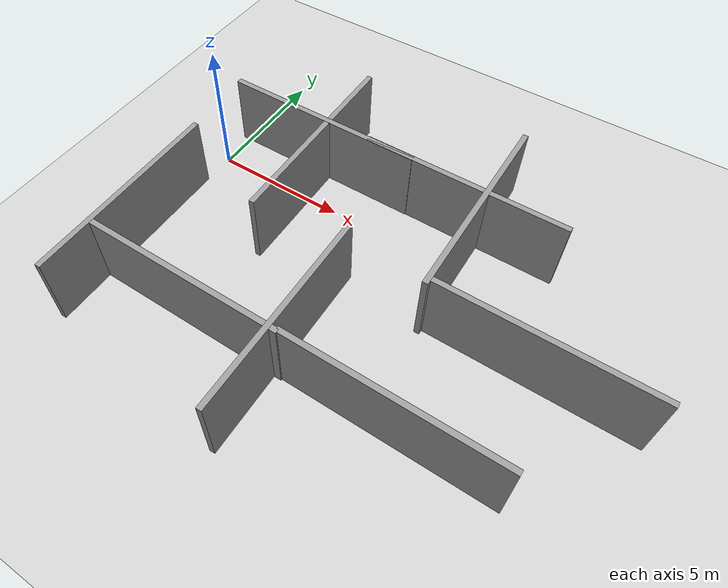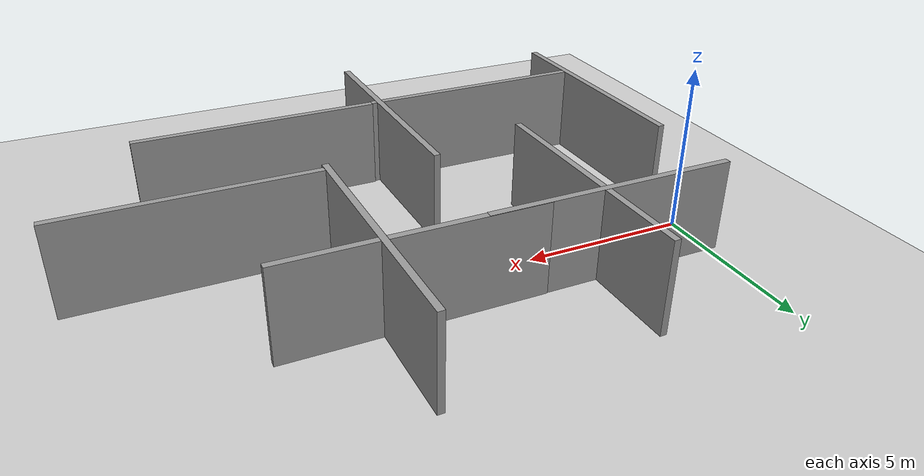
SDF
<sdf version="1.6">
 <world name="default">
  <light name="sun" type="directional">
   <pose>0 0 10 0 -0 0</pose>
   <diffuse>0.8 0.8 0.8 1</diffuse>
   <specular>0.2 0.2 0.2 1</specular>
   <attenuation>
    <range>1000</range>
    <constant>0.9</constant>
    <linear>0.01</linear>
    <quadratic>0.001</quadratic>
   </attenuation>
   <direction>-0.5 0.1 -0.9</direction>
  </light>
  <model name="ground_plane">
   <static>1</static>
   <link name="link">
    <collision name="collision">
     <geometry><plane><normal>0 0 1</normal><size>100 100</size></plane></geometry>
     <surface><friction><ode><mu>100</mu><mu2>50</mu2></ode></friction></surface>
    </collision>
    <visual name="visual">
     <cast_shadows>0</cast_shadows>
     <geometry><plane><normal>0 0 1</normal><size>100 100</size></plane></geometry>
     <material>
      <script><uri>file://media/materials/scripts/gazebo.material</uri><name>Gazebo/Grey</name></script>
     </material>
    </visual>
    <velocity_decay><linear>0</linear><angular>0</angular></velocity_decay>
   </link>
  </model>
  <physics name="default_physics" default="0" type="ode">
   <max_step_size>0.001</max_step_size>
   <real_time_factor>1</real_time_factor>
   <real_time_update_rate>1000</real_time_update_rate>
  </physics>
  <scene><ambient>0.4 0.4 0.4 1</ambient><background>0.7 0.7 0.7 1</background><shadows>1</shadows></scene>
  <model name="grey_wall">
   <static>1</static>
   <link name="link">
    <pose>0 0 1.4 0 -0 0</pose>
    <collision name="collision"><geometry><box><size>7.5 0.2 2.8</size></box></geometry></collision>
    <visual name="visual">
     <cast_shadows>0</cast_shadows>
     <geometry><box><size>7.5 0.2 2.8</size></box></geometry>
     <material>
      <script>
       <uri>model://grey_wall/materials/scripts</uri>
       <uri>model://grey_wall/materials/textures</uri>
       <name>vrc/grey_wall</name>
      </script>
     </material>
    </visual>
    <velocity_decay><linear>0</linear><angular>0</angular></velocity_decay>
   </link>
   <pose>3.43398 1.48982 0 0 -0 0</pose>
  </model>
  <gravity>0 0 -9.8</gravity>
  <magnetic_field>6e-06 2.3e-05 -4.2e-05</magnetic_field>
  <atmosphere type="adiabatic"/>
  <spherical_coordinates>
   <surface_model>EARTH_WGS84</surface_model>
   <latitude_deg>0</latitude_deg>
   <longitude_deg>0</longitude_deg>
   <elevation>0</elevation>
   <heading_deg>0</heading_deg>
  </spherical_coordinates>
  <model name="grey_wall_clone">
   <static>1</static>
   <link name="link">
    <pose>0 0 1.4 0 -0 0</pose>
    <collision name="collision"><geometry><box><size>7.5 0.2 2.8</size></box></geometry></collision>
    <visual name="visual">
     <cast_shadows>0</cast_shadows>
     <geometry><box><size>7.5 0.2 2.8</size></box></geometry>
     <material>
      <script>
       <uri>model://grey_wall/materials/scripts</uri>
       <uri>model://grey_wall/materials/textures</uri>
       <name>vrc/grey_wall</name>
      </script>
     </material>
    </visual>
    <velocity_decay><linear>0</linear><angular>0</angular></velocity_decay>
   </link>
   <pose>3.73863 0.62406 -0.000873 -3.8e-05 -0.002072 -1.55267</pose>
  </model>
  <model name="grey_wall_clone_0">
   <static>1</static>
   <link name="link">
    <pose>0 0 1.4 0 -0 0</pose>
    <collision name="collision"><geometry><box><size>7.5 0.2 2.8</size></box></geometry></collision>
    <visual name="visual">
     <cast_shadows>0</cast_shadows>
     <geometry><box><size>7.5 0.2 2.8</size></box></geometry>
     <material>
      <script>
       <uri>model://grey_wall/materials/scripts</uri>
       <uri>model://grey_wall/materials/textures</uri>
       <name>vrc/grey_wall</name>
      </script>
     </material>
    </visual>
    <velocity_decay><linear>0</linear><angular>0</angular></velocity_decay>
   </link>
   <pose>3.64552 -6.5512 0 0 -0 0</pose>
  </model>
  <model name="grey_wall_clone_clone">
   <static>1</static>
   <link name="link">
    <pose>0 0 1.4 0 -0 0</pose>
    <collision name="collision"><geometry><box><size>7.5 0.2 2.8</size></box></geometry></collision>
    <visual name="visual">
     <cast_shadows>0</cast_shadows>
     <geometry><box><size>7.5 0.2 2.8</size></box></geometry>
     <material>
      <script>
       <uri>model://grey_wall/materials/scripts</uri>
       <uri>model://grey_wall/materials/textures</uri>
       <name>vrc/grey_wall</name>
      </script>
     </material>
    </visual>
    <velocity_decay><linear>0</linear><angular>0</angular></velocity_decay>
   </link>
   <pose>-0.047018 -4.98891 -0.00123 -3.8e-05 -0.002072 -1.55267</pose>
  </model>
  <model name="grey_wall_clone_clone_0">
   <static>1</static>
   <link name="link">
    <pose>0 0 1.4 0 -0 0</pose>
    <collision name="collision"><geometry><box><size>7.5 0.2 2.8</size></box></geometry></collision>
    <visual name="visual">
     <cast_shadows>0</cast_shadows>
     <geometry><box><size>7.5 0.2 2.8</size></box></geometry>
     <material>
      <script>
       <uri>model://grey_wall/materials/scripts</uri>
       <uri>model://grey_wall/materials/textures</uri>
       <name>vrc/grey_wall</name>
      </script>
     </material>
    </visual>
    <velocity_decay><linear>0</linear><angular>0</angular></velocity_decay>
   </link>
   <pose>7.02894 -5.87584 0.003824 -3.8e-05 -0.002072 -1.55267</pose>
  </model>
  <model name="grey_wall_clone_0_clone">
   <static>1</static>
   <link name="link">
    <pose>0 0 1.4 0 -0 0</pose>
    <collision name="collision"><geometry><box><size>7.5 0.2 2.8</size></box></geometry></collision>
    <visual name="visual">
     <cast_shadows>0</cast_shadows>
     <geometry><box><size>7.5 0.2 2.8</size></box></geometry>
     <material>
      <script>
       <uri>model://grey_wall/materials/scripts</uri>
       <uri>model://grey_wall/materials/textures</uri>
       <name>vrc/grey_wall</name>
      </script>
     </material>
    </visual>
    <velocity_decay><linear>0</linear><angular>0</angular></velocity_decay>
   </link>
   <pose>11.0687 -6.50166 0 0 -0 0</pose>
  </model>
  <model name="grey_wall_clone_1">
   <static>1</static>
   <link name="link">
    <pose>0 0 1.4 0 -0 0</pose>
    <collision name="collision"><geometry><box><size>7.5 0.2 2.8</size></box></geometry></collision>
    <visual name="visual">
     <cast_shadows>0</cast_shadows>
     <geometry><box><size>7.5 0.2 2.8</size></box></geometry>
     <material>
      <script>
       <uri>model://grey_wall/materials/scripts</uri>
       <uri>model://grey_wall/materials/textures</uri>
       <name>vrc/grey_wall</name>
      </script>
     </material>
    </visual>
    <velocity_decay><linear>0</linear><angular>0</angular></velocity_decay>
   </link>
   <pose>13.7329 -2.55807 0 0 -0 0</pose>
  </model>
  <model name="grey_wall_clone_clone_0_clone">
   <static>1</static>
   <link name="link">
    <pose>0 0 1.4 0 -0 0</pose>
    <collision name="collision"><geometry><box><size>7.5 0.2 2.8</size></box></geometry></collision>
    <visual name="visual">
     <cast_shadows>0</cast_shadows>
     <geometry><box><size>7.5 0.2 2.8</size></box></geometry>
     <material>
      <script>
       <uri>model://grey_wall/materials/scripts</uri>
       <uri>model://grey_wall/materials/textures</uri>
       <name>vrc/grey_wall</name>
      </script>
     </material>
    </visual>
    <velocity_decay><linear>0</linear><angular>0</angular></velocity_decay>
   </link>
   <pose>9.97701 0.921178 0.003824 -3.8e-05 -0.002072 -1.55267</pose>
  </model>
  <model name="grey_wall_clone_2">
   <static>1</static>
   <link name="link">
    <pose>0 0 1.4 0 -0 0</pose>
    <collision name="collision"><geometry><box><size>7.5 0.2 2.8</size></box></geometry></collision>
    <visual name="visual">
     <cast_shadows>0</cast_shadows>
     <geometry><box><size>7.5 0.2 2.8</size></box></geometry>
     <material>
      <script>
       <uri>model://grey_wall/materials/scripts</uri>
       <uri>model://grey_wall/materials/textures</uri>
       <name>vrc/grey_wall</name>
      </script>
     </material>
    </visual>
    <velocity_decay><linear>0</linear><angular>0</angular></velocity_decay>
   </link>
   <pose>9.13448 1.51 0 0 -0 0</pose>
  </model>
 </world>
</sdf>
